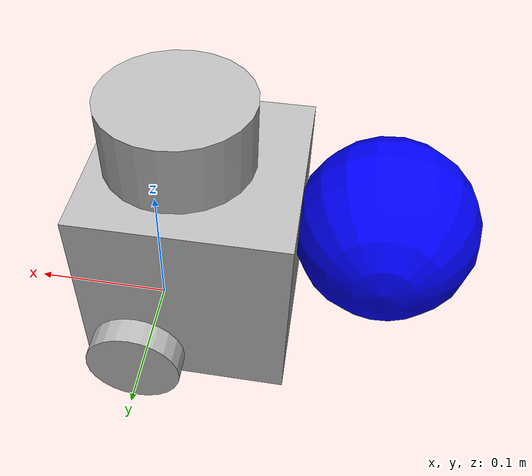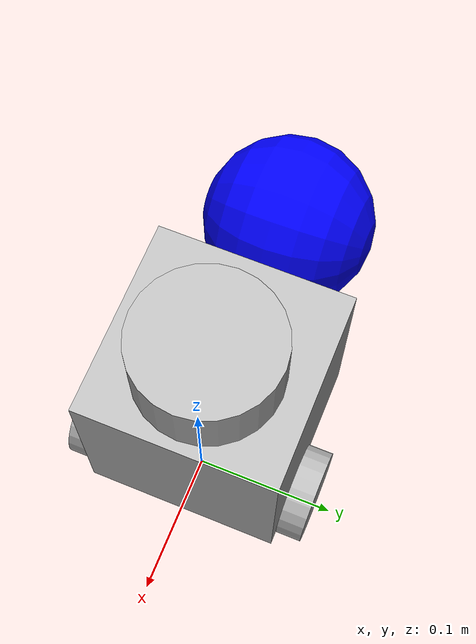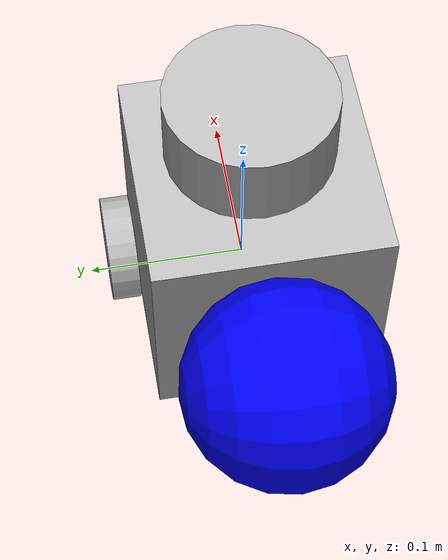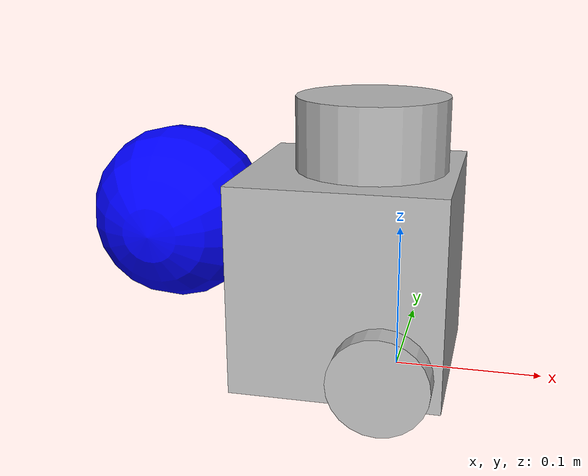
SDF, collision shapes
<?xml version='1.0'?>
<sdf version='1.6'>
  <model name='turtlebot3_burger'>
    <link name='base'>
      <pose frame=''>0 0 0 0 -0 0</pose>
      <inertial>
        <pose frame=''>-0.032 0 0.07 0 -0 0</pose>
        <inertia>
          <ixx>0.001</ixx>
          <ixy>0</ixy>
          <ixz>0</ixz>
          <iyy>0.001</iyy>
          <iyz>0</iyz>
          <izz>0.001</izz>
        </inertia>
        <mass>1</mass>
      </inertial>
      <self_collide>0</self_collide>
      <kinematic>0</kinematic>
      <visual name='base_visual'>
        <pose frame=''>-0.032 0 0 0 -0 0</pose>
        <geometry>
          <mesh>
            <uri>model://turtlebot3_burger/meshes/burger_base.dae</uri>
            <scale>0.001 0.001 0.001</scale>
          </mesh>
        </geometry>
        <cast_shadows>1</cast_shadows>
        <transparency>0</transparency>
      </visual>
      <collision name='base_collision'>
        <laser_retro>0</laser_retro>
        <max_contacts>10</max_contacts>
        <pose frame=''>-0.032 0 0.07 0 -0 0</pose>
        <geometry>
          <box>
            <size>0.14 0.14 0.14</size>
          </box>
        </geometry>
        <surface>
          <friction>
            <ode>
              <mu>1</mu>
              <mu2>1</mu2>
              <fdir1>0 0 0</fdir1>
              <slip1>0</slip1>
              <slip2>0</slip2>
            </ode>
            <torsional>
              <coefficient>1</coefficient>
              <patch_radius>0</patch_radius>
              <surface_radius>0</surface_radius>
              <use_patch_radius>1</use_patch_radius>
              <ode>
                <slip>0</slip>
              </ode>
            </torsional>
          </friction>
          <bounce>
            <restitution_coefficient>0</restitution_coefficient>
            <threshold>1e+06</threshold>
          </bounce>
          <contact>
            <collide_without_contact>0</collide_without_contact>
            <collide_without_contact_bitmask>1</collide_without_contact_bitmask>
            <collide_bitmask>1</collide_bitmask>
            <ode>
              <soft_cfm>0</soft_cfm>
              <soft_erp>0.2</soft_erp>
              <kp>1e+13</kp>
              <kd>1</kd>
              <max_vel>0.01</max_vel>
              <min_depth>0</min_depth>
            </ode>
            <bullet>
              <split_impulse>1</split_impulse>
              <split_impulse_penetration_threshold>-0.01</split_impulse_penetration_threshold>
              <soft_cfm>0</soft_cfm>
              <soft_erp>0.2</soft_erp>
              <kp>1e+13</kp>
              <kd>1</kd>
            </bullet>
          </contact>
        </surface>
      </collision>
      <collision name='caster_collision'>
        <laser_retro>0</laser_retro>
        <max_contacts>10</max_contacts>
        <pose frame=''>-0.081 0 -0.004 0 -0 0</pose>
        <geometry>
          <sphere>
            <radius>0.005</radius>
          </sphere>
        </geometry>
        <surface>
          <friction>
            <ode>
              <mu>100000</mu>
              <mu2>100000</mu2>
              <fdir1>0 0 0</fdir1>
              <slip1>0</slip1>
              <slip2>0</slip2>
            </ode>
            <torsional>
              <coefficient>1</coefficient>
              <patch_radius>0</patch_radius>
              <surface_radius>0</surface_radius>
              <use_patch_radius>1</use_patch_radius>
              <ode>
                <slip>0</slip>
              </ode>
            </torsional>
          </friction>
          <bounce>
            <restitution_coefficient>0</restitution_coefficient>
            <threshold>1e+06</threshold>
          </bounce>
          <contact>
            <collide_without_contact>0</collide_without_contact>
            <collide_without_contact_bitmask>1</collide_without_contact_bitmask>
            <collide_bitmask>1</collide_bitmask>
            <ode>
              <soft_cfm>0</soft_cfm>
              <soft_erp>0.2</soft_erp>
              <kp>1e+13</kp>
              <kd>1</kd>
              <max_vel>0.01</max_vel>
              <min_depth>0</min_depth>
            </ode>
            <bullet>
              <split_impulse>1</split_impulse>
              <split_impulse_penetration_threshold>-0.01</split_impulse_penetration_threshold>
              <soft_cfm>0</soft_cfm>
              <soft_erp>0.2</soft_erp>
              <kp>1e+13</kp>
              <kd>1</kd>
            </bullet>
          </contact>
        </surface>
      </collision>
    </link>
    <link name='left_wheel'>
      <pose frame=''>0 0 0 0 -0 0</pose>
      <inertial>
        <pose frame=''>0 0.08 0.023 -1.57 0 0</pose>
        <inertia>
          <ixx>0.001</ixx>
          <ixy>0</ixy>
          <ixz>0</ixz>
          <iyy>0.001</iyy>
          <iyz>0</iyz>
          <izz>0.001</izz>
        </inertia>
        <mass>0.1</mass>
      </inertial>
      <self_collide>0</self_collide>
      <kinematic>0</kinematic>
      <visual name='left_wheel_visual'>
        <pose frame=''>0 0.08 0.023 0 -0 0</pose>
        <geometry>
          <mesh>
            <uri>model://turtlebot3_burger/meshes/left_tire.dae</uri>
            <scale>0.001 0.001 0.001</scale>
          </mesh>
        </geometry>
        <cast_shadows>1</cast_shadows>
        <transparency>0</transparency>
      </visual>
      <collision name='left_wheel_collision'>
        <laser_retro>0</laser_retro>
        <max_contacts>10</max_contacts>
        <pose frame=''>0 0.08 0.023 -1.57 0 0</pose>
        <geometry>
          <cylinder>
            <radius>0.033</radius>
            <length>0.018</length>
          </cylinder>
        </geometry>
        <surface>
          <friction>
            <ode>
              <mu>100000</mu>
              <mu2>100000</mu2>
              <fdir1>0 0 0</fdir1>
              <slip1>0</slip1>
              <slip2>0</slip2>
            </ode>
            <torsional>
              <coefficient>1</coefficient>
              <patch_radius>0</patch_radius>
              <surface_radius>0</surface_radius>
              <use_patch_radius>1</use_patch_radius>
              <ode>
                <slip>0</slip>
              </ode>
            </torsional>
          </friction>
          <bounce>
            <restitution_coefficient>0</restitution_coefficient>
            <threshold>1e+06</threshold>
          </bounce>
          <contact>
            <collide_without_contact>0</collide_without_contact>
            <collide_without_contact_bitmask>1</collide_without_contact_bitmask>
            <collide_bitmask>1</collide_bitmask>
            <ode>
              <soft_cfm>0</soft_cfm>
              <soft_erp>0.2</soft_erp>
              <kp>1e+13</kp>
              <kd>1</kd>
              <max_vel>0.01</max_vel>
              <min_depth>0</min_depth>
            </ode>
            <bullet>
              <split_impulse>1</split_impulse>
              <split_impulse_penetration_threshold>-0.01</split_impulse_penetration_threshold>
              <soft_cfm>0</soft_cfm>
              <soft_erp>0.2</soft_erp>
              <kp>1e+13</kp>
              <kd>1</kd>
            </bullet>
          </contact>
        </surface>
      </collision>
    </link>
    <link name='lidar'>
      <pose frame=''>0 0 0 0 -0 0</pose>
      <inertial>
        <pose frame=''>-0.02 0 0.161 0 -0 0</pose>
        <inertia>
          <ixx>0.001</ixx>
          <ixy>0</ixy>
          <ixz>0</ixz>
          <iyy>0.001</iyy>
          <iyz>0</iyz>
          <izz>0.001</izz>
        </inertia>
        <mass>0.125</mass>
      </inertial>
      <self_collide>0</self_collide>
      <kinematic>0</kinematic>
      <sensor name='hls_lfcd_lds' type='ray'>
        <always_on>1</always_on>
        <visualize>0</visualize>
        <pose frame=''>-0.032 0 0.171 0 -0 0</pose>
        <update_rate>1800</update_rate>
        <ray>
          <scan>
            <horizontal>
              <samples>360</samples>
              <resolution>1</resolution>
              <min_angle>0</min_angle>
              <max_angle>6.28</max_angle>
            </horizontal>
            <vertical>
              <samples>1</samples>
              <min_angle>0</min_angle>
              <max_angle>0</max_angle>
            </vertical>
          </scan>
          <range>
            <min>0.12</min>
            <max>3.5</max>
            <resolution>0.015</resolution>
          </range>
          <noise>
            <type>gaussian</type>
            <mean>0</mean>
            <stddev>0.01</stddev>
          </noise>
        </ray>
      </sensor>
      <visual name='lidar_sensor_visual'>
        <pose frame=''>-0.032 0 0.171 0 -0 0</pose>
        <geometry>
          <mesh>
            <uri>model://turtlebot3_burger/meshes/lds.dae</uri>
            <scale>0.001 0.001 0.001</scale>
          </mesh>
        </geometry>
        <cast_shadows>1</cast_shadows>
        <transparency>0</transparency>
      </visual>
      <collision name='lidar_sensor_collision'>
        <laser_retro>0</laser_retro>
        <max_contacts>10</max_contacts>
        <pose frame=''>-0.02 0 0.161 0 -0 0</pose>
        <geometry>
          <cylinder>
            <radius>0.0508</radius>
            <length>0.055</length>
          </cylinder>
        </geometry>
        <surface>
          <friction>
            <ode>
              <mu>1</mu>
              <mu2>1</mu2>
              <fdir1>0 0 0</fdir1>
              <slip1>0</slip1>
              <slip2>0</slip2>
            </ode>
            <torsional>
              <coefficient>1</coefficient>
              <patch_radius>0</patch_radius>
              <surface_radius>0</surface_radius>
              <use_patch_radius>1</use_patch_radius>
              <ode>
                <slip>0</slip>
              </ode>
            </torsional>
          </friction>
          <bounce>
            <restitution_coefficient>0</restitution_coefficient>
            <threshold>1e+06</threshold>
          </bounce>
          <contact>
            <collide_without_contact>0</collide_without_contact>
            <collide_without_contact_bitmask>1</collide_without_contact_bitmask>
            <collide_bitmask>1</collide_bitmask>
            <ode>
              <soft_cfm>0</soft_cfm>
              <soft_erp>0.2</soft_erp>
              <kp>1e+13</kp>
              <kd>1</kd>
              <max_vel>0.01</max_vel>
              <min_depth>0</min_depth>
            </ode>
            <bullet>
              <split_impulse>1</split_impulse>
              <split_impulse_penetration_threshold>-0.01</split_impulse_penetration_threshold>
              <soft_cfm>0</soft_cfm>
              <soft_erp>0.2</soft_erp>
              <kp>1e+13</kp>
              <kd>1</kd>
            </bullet>
          </contact>
        </surface>
      </collision>
    </link>
    <link name='link_0'>
      <pose frame=''>-0.157712 0.003247 0.101826 1.61267 -0.074337 -0.011649</pose>
      <inertial>
        <mass>0.00179336</mass>
        <inertia>
          <ixx>2.65e-06</ixx>
          <ixy>0</ixy>
          <ixz>0</ixz>
          <iyy>2.65e-06</iyy>
          <iyz>0</iyz>
          <izz>2.65e-06</izz>
        </inertia>
        <pose frame=''>0 0 0 0 -0 0</pose>
      </inertial>
      <gravity>1</gravity>
      <self_collide>0</self_collide>
      <kinematic>0</kinematic>
      <visual name='visual'>
        <pose frame=''>0 0 0 0 -0 0</pose>
        <geometry>
          <sphere>
            <radius>0.0607481</radius>
          </sphere>
        </geometry>
        <material>
          <lighting>1</lighting>
          <script>
            <uri>file://media/materials/scripts/gazebo.material</uri>
            <name>Gazebo/Grey</name>
          </script>
          <ambient>0 0 1 1</ambient>
          <diffuse>0 0 1 1</diffuse>
          <specular>0 0 1 1</specular>
          <emissive>0 0 1 1</emissive>
          <shader type='vertex'>
            <normal_map>__default__</normal_map>
          </shader>
        </material>
        <cast_shadows>1</cast_shadows>
        <transparency>0</transparency>
      </visual>
      <collision name='collision'>
        <laser_retro>0</laser_retro>
        <max_contacts>10</max_contacts>
        <pose frame=''>0 0 0 0 -0 0</pose>
        <geometry>
          <sphere>
            <radius>0.060748</radius>
          </sphere>
        </geometry>
        <surface>
          <friction>
            <ode>
              <mu>1</mu>
              <mu2>1</mu2>
              <fdir1>0 0 0</fdir1>
              <slip1>0</slip1>
              <slip2>0</slip2>
            </ode>
            <torsional>
              <coefficient>1</coefficient>
              <patch_radius>0</patch_radius>
              <surface_radius>0</surface_radius>
              <use_patch_radius>1</use_patch_radius>
              <ode>
                <slip>0</slip>
              </ode>
            </torsional>
          </friction>
          <bounce>
            <restitution_coefficient>0</restitution_coefficient>
            <threshold>1e+06</threshold>
          </bounce>
          <contact>
            <collide_without_contact>0</collide_without_contact>
            <collide_without_contact_bitmask>1</collide_without_contact_bitmask>
            <collide_bitmask>1</collide_bitmask>
            <ode>
              <soft_cfm>0</soft_cfm>
              <soft_erp>0.2</soft_erp>
              <kp>1e+13</kp>
              <kd>1</kd>
              <max_vel>0.01</max_vel>
              <min_depth>0</min_depth>
            </ode>
            <bullet>
              <split_impulse>1</split_impulse>
              <split_impulse_penetration_threshold>-0.01</split_impulse_penetration_threshold>
              <soft_cfm>0</soft_cfm>
              <soft_erp>0.2</soft_erp>
              <kp>1e+13</kp>
              <kd>1</kd>
            </bullet>
          </contact>
        </surface>
      </collision>
    </link>
    <link name='right_wheel'>
      <pose frame=''>0 0 0 0 -0 0</pose>
      <inertial>
        <pose frame=''>0 -0.08 0.023 -1.57 0 0</pose>
        <inertia>
          <ixx>0.001</ixx>
          <ixy>0</ixy>
          <ixz>0</ixz>
          <iyy>0.001</iyy>
          <iyz>0</iyz>
          <izz>0.001</izz>
        </inertia>
        <mass>0.1</mass>
      </inertial>
      <self_collide>0</self_collide>
      <kinematic>0</kinematic>
      <visual name='right_wheel_visual'>
        <pose frame=''>0 -0.08 0.023 0 -0 0</pose>
        <geometry>
          <mesh>
            <uri>model://turtlebot3_burger/meshes/right_tire.dae</uri>
            <scale>0.001 0.001 0.001</scale>
          </mesh>
        </geometry>
        <cast_shadows>1</cast_shadows>
        <transparency>0</transparency>
      </visual>
      <collision name='right_wheel_collision'>
        <laser_retro>0</laser_retro>
        <max_contacts>10</max_contacts>
        <pose frame=''>0 -0.08 0.023 -1.57 0 0</pose>
        <geometry>
          <cylinder>
            <radius>0.033</radius>
            <length>0.018</length>
          </cylinder>
        </geometry>
        <surface>
          <friction>
            <ode>
              <mu>100000</mu>
              <mu2>100000</mu2>
              <fdir1>0 0 0</fdir1>
              <slip1>0</slip1>
              <slip2>0</slip2>
            </ode>
            <torsional>
              <coefficient>1</coefficient>
              <patch_radius>0</patch_radius>
              <surface_radius>0</surface_radius>
              <use_patch_radius>1</use_patch_radius>
              <ode>
                <slip>0</slip>
              </ode>
            </torsional>
          </friction>
          <bounce>
            <restitution_coefficient>0</restitution_coefficient>
            <threshold>1e+06</threshold>
          </bounce>
          <contact>
            <collide_without_contact>0</collide_without_contact>
            <collide_without_contact_bitmask>1</collide_without_contact_bitmask>
            <collide_bitmask>1</collide_bitmask>
            <ode>
              <soft_cfm>0</soft_cfm>
              <soft_erp>0.2</soft_erp>
              <kp>1e+13</kp>
              <kd>1</kd>
              <max_vel>0.01</max_vel>
              <min_depth>0</min_depth>
            </ode>
            <bullet>
              <split_impulse>1</split_impulse>
              <split_impulse_penetration_threshold>-0.01</split_impulse_penetration_threshold>
              <soft_cfm>0</soft_cfm>
              <soft_erp>0.2</soft_erp>
              <kp>1e+13</kp>
              <kd>1</kd>
            </bullet>
          </contact>
        </surface>
      </collision>
    </link>
    <joint name='left_wheel_joint' type='revolute'>
      <parent>base</parent>
      <child>left_wheel</child>
      <pose frame=''>0 0.08 0.023 -1.57 0 0</pose>
      <axis>
        <xyz>0 1 0</xyz>
        <use_parent_model_frame>1</use_parent_model_frame>
        <limit>
          <lower>-1e+16</lower>
          <upper>1e+16</upper>
          <effort>-1</effort>
          <velocity>-1</velocity>
        </limit>
        <dynamics>
          <spring_reference>0</spring_reference>
          <spring_stiffness>0</spring_stiffness>
          <damping>0</damping>
          <friction>0</friction>
        </dynamics>
      </axis>
      <physics>
        <ode>
          <limit>
            <cfm>0</cfm>
            <erp>0.2</erp>
          </limit>
          <suspension>
            <cfm>0</cfm>
            <erp>0.2</erp>
          </suspension>
        </ode>
      </physics>
    </joint>
    <joint name='lidar_joint' type='fixed'>
      <parent>base</parent>
      <child>lidar</child>
      <pose frame=''>-0.032 0 0.171 0 -0 0</pose>
      <physics>
        <ode>
          <limit>
            <cfm>0</cfm>
            <erp>0.2</erp>
          </limit>
          <suspension>
            <cfm>0</cfm>
            <erp>0.2</erp>
          </suspension>
        </ode>
      </physics>
    </joint>
    <joint name='right_wheel_joint' type='revolute'>
      <parent>base</parent>
      <child>right_wheel</child>
      <pose frame=''>0 -0.08 0.023 -1.57 0 0</pose>
      <axis>
        <xyz>0 1 0</xyz>
        <use_parent_model_frame>1</use_parent_model_frame>
        <limit>
          <lower>-1e+16</lower>
          <upper>1e+16</upper>
          <effort>-1</effort>
          <velocity>-1</velocity>
        </limit>
        <dynamics>
          <spring_reference>0</spring_reference>
          <spring_stiffness>0</spring_stiffness>
          <damping>0</damping>
          <friction>0</friction>
        </dynamics>
      </axis>
      <physics>
        <ode>
          <limit>
            <cfm>0</cfm>
            <erp>0.2</erp>
          </limit>
          <suspension>
            <cfm>0</cfm>
            <erp>0.2</erp>
          </suspension>
        </ode>
      </physics>
    </joint>
    <static>0</static>
    <allow_auto_disable>1</allow_auto_disable>
  </model>
</sdf>
